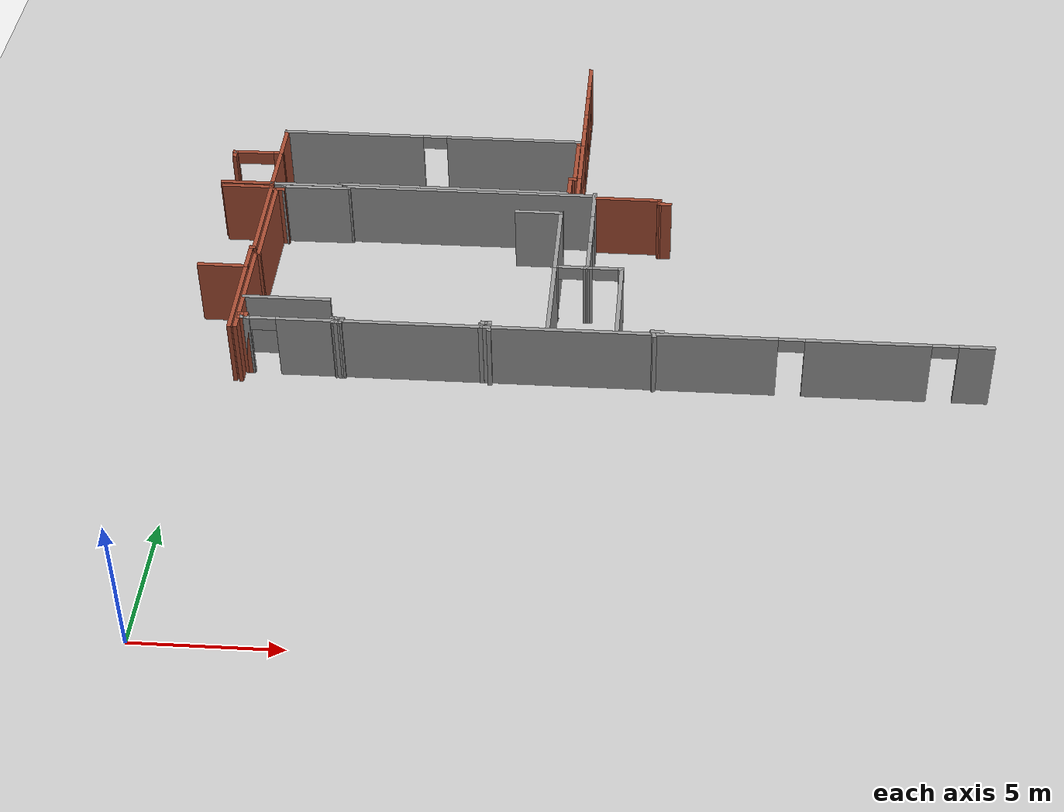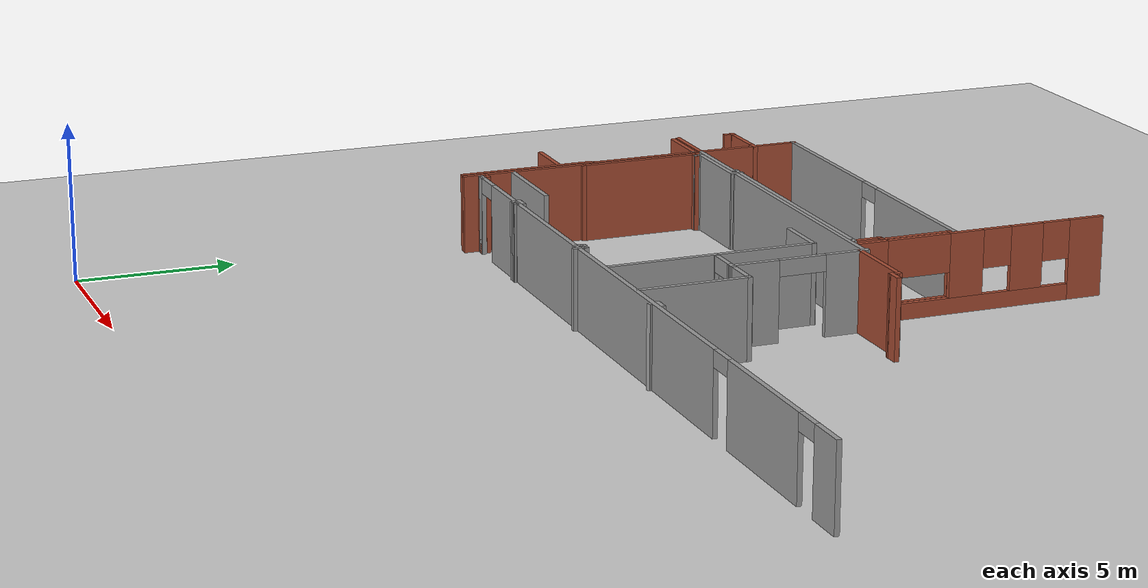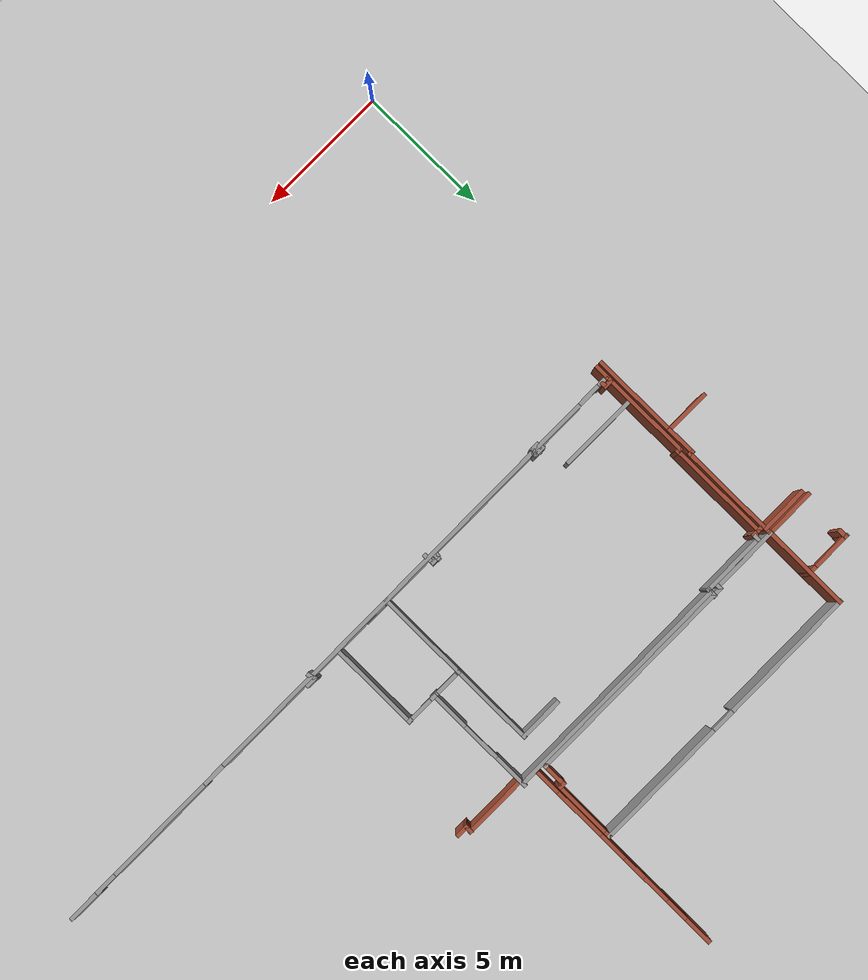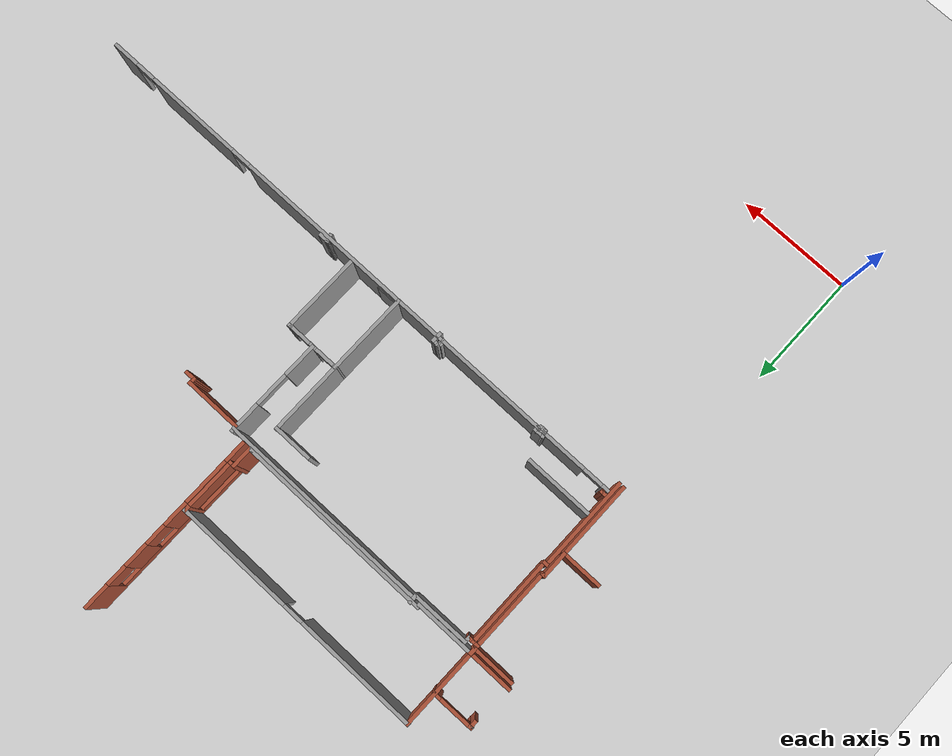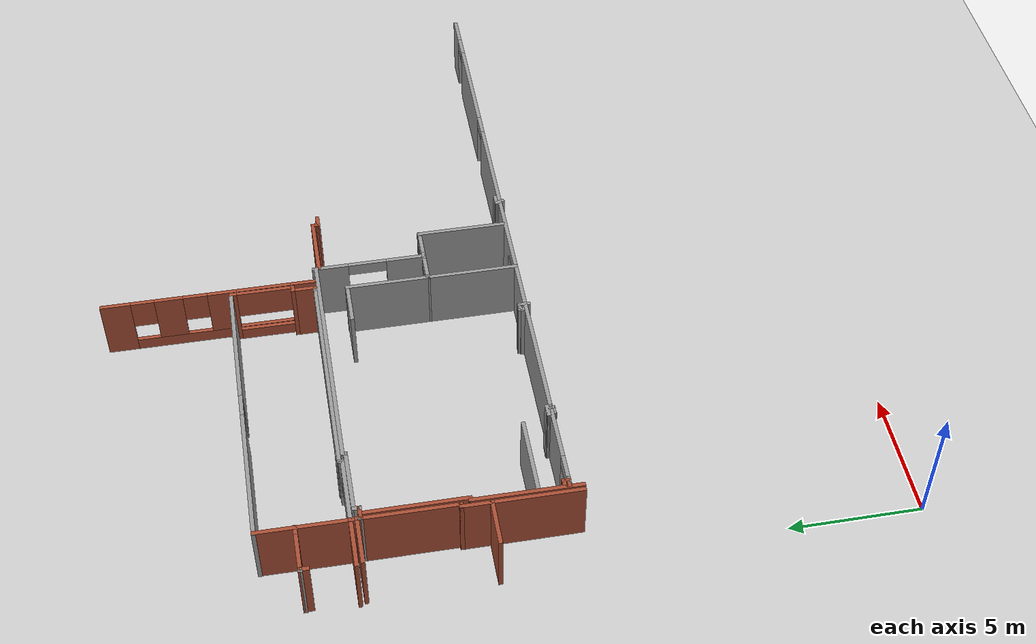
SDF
<sdf version="1.6">
 <world name="default">
  <model name="ground_plane">
   <static>1</static>
   <link name="link">
    <collision name="collision">
     <geometry><plane><normal>0 0 1</normal><size>100 100</size></plane></geometry>
     <surface><friction><ode><mu>100</mu><mu2>50</mu2></ode></friction></surface>
    </collision>
    <visual name="visual">
     <cast_shadows>0</cast_shadows>
     <geometry><plane><normal>0 0 1</normal><size>100 100</size></plane></geometry>
     <material>
      <script><uri>file://media/materials/scripts/gazebo.material</uri><name>Gazebo/Grey</name></script>
     </material>
    </visual>
   </link>
  </model>
  <model name="CVSSP">
   <pose>23.8714 24.094 0 0 -0 0</pose>
   <link name="Door_85">
    <collision name="Door_85_Collision">
     <geometry><box><size>0.9 0.17 2</size></box></geometry>
     <pose>0 0 1 0 -0 0</pose>
    </collision>
    <visual name="Door_85_Visual">
     <pose>0 0 1 0 -0 0</pose>
     <geometry><box><size>0.9 0.17 2</size></box></geometry>
     <material>
      <script><uri>file://media/materials/scripts/gazebo.material</uri><name>Gazebo/Grey</name></script>
     </material>
    </visual>
    <pose>-11.2111 -11.3756 0 0 -0 0</pose>
   </link>
   <link name="Wall_440">
    <pose>-17.0303 -0.419062 0 0 -0 3.14158</pose>
    <visual name="Wall_440_Visual_0">
     <pose>-3.09878 0 1.25 0 -0 0</pose>
     <geometry><box><size>5.103 0.15 2.5</size></box></geometry>
     <material>
      <script><uri>file://media/materials/scripts/gazebo.material</uri><name>Gazebo/Grey</name></script>
      <ambient>0.588235 0.588235 0.588235 1</ambient>
     </material>
    </visual>
    <collision name="Wall_440_Collision_0">
     <geometry><box><size>5.103 0.15 2.5</size></box></geometry>
     <pose>-3.09878 0 1.25 0 -0 0</pose>
    </collision>
    <visual name="Wall_440_Visual_1">
     <pose>3.0015 0 1.25 0 -0 0</pose>
     <geometry><box><size>5.29756 0.15 2.5</size></box></geometry>
     <material>
      <script><uri>file://media/materials/scripts/gazebo.material</uri><name>Gazebo/Grey</name></script>
      <ambient>0.588235 0.588235 0.588235 1</ambient>
     </material>
    </visual>
    <collision name="Wall_440_Collision_1">
     <geometry><box><size>5.29756 0.15 2.5</size></box></geometry>
     <pose>3.0015 0 1.25 0 -0 0</pose>
    </collision>
    <visual name="Wall_440_Visual_2">
     <pose>-0.097282 0 2.25 0 -0 0</pose>
     <geometry><box><size>0.9 0.15 0.5</size></box></geometry>
     <material>
      <script><uri>file://media/materials/scripts/gazebo.material</uri><name>Gazebo/Grey</name></script>
      <ambient>0.588235 0.588235 0.588235 1</ambient>
     </material>
    </visual>
    <collision name="Wall_440_Collision_2">
     <geometry><box><size>0.9 0.15 0.5</size></box></geometry>
     <pose>-0.097282 0 2.25 0 -0 0</pose>
    </collision>
   </link>
   <link name="Wall_446">
    <collision name="Wall_446_Collision">
     <geometry><box><size>3.45993 0.15 2.5</size></box></geometry>
     <pose>0 0 1.25 0 -0 0</pose>
    </collision>
    <visual name="Wall_446_Visual">
     <pose>0 0 1.25 0 -0 0</pose>
     <geometry><box><size>3.45993 0.15 2.5</size></box></geometry>
     <material>
      <script><uri>file://media/materials/scripts/gazebo.material</uri><name>Gazebo/Bricks</name></script>
      <ambient>1 1 1 1</ambient>
     </material>
    </visual>
    <pose>-22.5968 -2.07393 0 0 0 -1.57608</pose>
   </link>
   <link name="Wall_447">
    <collision name="Wall_447_Collision">
     <geometry><box><size>2.66471 0.15 2.5</size></box></geometry>
     <pose>0 0 1.25 0 -0 0</pose>
    </collision>
    <visual name="Wall_447_Visual">
     <pose>0 0 1.25 0 -0 0</pose>
     <geometry><box><size>2.66471 0.15 2.5</size></box></geometry>
     <material>
      <script><uri>file://media/materials/scripts/gazebo.material</uri><name>Gazebo/Grey</name></script>
      <ambient>0.588235 0.588235 0.588235 1</ambient>
     </material>
    </visual>
    <pose>-21.3307 -3.72683 0 0 -0 0.001626</pose>
   </link>
   <link name="Wall_449">
    <collision name="Wall_449_Collision">
     <geometry><box><size>0.25 0.15 2.5</size></box></geometry>
     <pose>0 0 1.25 0 -0 0</pose>
    </collision>
    <visual name="Wall_449_Visual">
     <pose>0 0 1.25 0 -0 0</pose>
     <geometry><box><size>0.25 0.15 2.5</size></box></geometry>
     <material>
      <script><uri>file://media/materials/scripts/gazebo.material</uri><name>Gazebo/Grey</name></script>
      <ambient>1 1 1 1</ambient>
     </material>
    </visual>
    <pose>-20.0734 -3.67478 0 0 -0 1.5708</pose>
   </link>
   <link name="Wall_450">
    <collision name="Wall_450_Collision">
     <geometry><box><size>8.5 0.15 2.5</size></box></geometry>
     <pose>0 0 1.25 0 -0 0</pose>
    </collision>
    <visual name="Wall_450_Visual">
     <pose>0 0 1.25 0 -0 0</pose>
     <geometry><box><size>8.5 0.15 2.5</size></box></geometry>
     <material>
      <script><uri>file://media/materials/scripts/gazebo.material</uri><name>Gazebo/Grey</name></script>
      <ambient>0.588235 0.588235 0.588235 1</ambient>
     </material>
    </visual>
    <pose>-15.8984 -3.62478 0 0 -0 0</pose>
   </link>
   <link name="Wall_451">
    <collision name="Wall_451_Collision">
     <geometry><box><size>0.25 0.15 2.5</size></box></geometry>
     <pose>0 0 1.25 0 -0 0</pose>
    </collision>
    <visual name="Wall_451_Visual">
     <pose>0 0 1.25 0 -0 0</pose>
     <geometry><box><size>0.25 0.15 2.5</size></box></geometry>
     <material>
      <script><uri>file://media/materials/scripts/gazebo.material</uri><name>Gazebo/Grey</name></script>
      <ambient>1 1 1 1</ambient>
     </material>
    </visual>
    <pose>-11.6734 -3.62478 0 0 -0 0</pose>
   </link>
   <link name="Wall_452">
    <collision name="Wall_452_Collision">
     <geometry><box><size>1 0.15 2.5</size></box></geometry>
     <pose>0 0 1.25 0 -0 0</pose>
    </collision>
    <visual name="Wall_452_Visual">
     <pose>0 0 1.25 0 -0 0</pose>
     <geometry><box><size>1 0.15 2.5</size></box></geometry>
     <material>
      <script><uri>file://media/materials/scripts/gazebo.material</uri><name>Gazebo/Bricks</name></script>
      <ambient>1 1 1 1</ambient>
     </material>
    </visual>
    <pose>-11.6234 -3.19978 0 0 -0 1.5708</pose>
   </link>
   <link name="Wall_453">
    <collision name="Wall_453_Collision">
     <geometry><box><size>0.31087 0.15 2.5</size></box></geometry>
     <pose>0 0 1.25 0 -0 0</pose>
    </collision>
    <visual name="Wall_453_Visual">
     <pose>0 0 1.25 0 -0 0</pose>
     <geometry><box><size>0.31087 0.15 2.5</size></box></geometry>
     <material>
      <script><uri>file://media/materials/scripts/gazebo.material</uri><name>Gazebo/Bricks</name></script>
      <ambient>1 1 1 1</ambient>
     </material>
    </visual>
    <pose>-11.543 -2.77478 0 0 -0 0</pose>
   </link>
   <link name="Wall_456">
    <pose>-11.4588 -1.59696 0 0 0 -1.57398</pose>
    <visual name="Wall_456_Visual_0">
     <pose>-1.10718 0 1.25 0 -0 0</pose>
     <geometry><box><size>0.291309 0.15 2.5</size></box></geometry>
     <material>
      <script><uri>file://media/materials/scripts/gazebo.material</uri><name>Gazebo/Bricks</name></script>
      <ambient>1 1 1 1</ambient>
     </material>
    </visual>
    <collision name="Wall_456_Collision_0">
     <geometry><box><size>0.291309 0.15 2.5</size></box></geometry>
     <pose>-1.10718 0 1.25 0 -0 0</pose>
    </collision>
    <visual name="Wall_456_Visual_1">
     <pose>0.145655 0 0.25 0 -0 0</pose>
     <geometry><box><size>2.21435 0.15 0.5</size></box></geometry>
     <material>
      <script><uri>file://media/materials/scripts/gazebo.material</uri><name>Gazebo/Bricks</name></script>
      <ambient>1 1 1 1</ambient>
     </material>
    </visual>
    <collision name="Wall_456_Collision_1">
     <geometry><box><size>2.21435 0.15 0.5</size></box></geometry>
     <pose>0.145655 0 0.25 0 -0 0</pose>
    </collision>
    <visual name="Wall_456_Visual_2">
     <pose>1.18044 0 1.5 0 -0 0</pose>
     <geometry><box><size>0.144785 0.15 2</size></box></geometry>
     <material>
      <script><uri>file://media/materials/scripts/gazebo.material</uri><name>Gazebo/Bricks</name></script>
      <ambient>1 1 1 1</ambient>
     </material>
    </visual>
    <collision name="Wall_456_Collision_2">
     <geometry><box><size>0.144785 0.15 2</size></box></geometry>
     <pose>1.18044 0 1.5 0 -0 0</pose>
    </collision>
    <visual name="Wall_456_Visual_3">
     <pose>0.073262 0 1.9 0 -0 0</pose>
     <geometry><box><size>2.06957 0.15 1.2</size></box></geometry>
     <material>
      <script><uri>file://media/materials/scripts/gazebo.material</uri><name>Gazebo/Bricks</name></script>
      <ambient>1 1 1 1</ambient>
     </material>
    </visual>
    <collision name="Wall_456_Collision_3">
     <geometry><box><size>2.06957 0.15 1.2</size></box></geometry>
     <pose>0.073262 0 1.9 0 -0 0</pose>
    </collision>
   </link>
   <link name="Wall_462">
    <pose>-11.2891 0.422048 0 0 0 -1.5708</pose>
    <visual name="Wall_462_Visual_0">
     <pose>-3.525 0 1.25 0 -0 0</pose>
     <geometry><box><size>1.14727 0.15 2.5</size></box></geometry>
     <material>
      <script><uri>file://media/materials/scripts/gazebo.material</uri><name>Gazebo/Bricks</name></script>
      <ambient>1 1 1 1</ambient>
     </material>
    </visual>
    <collision name="Wall_462_Collision_0">
     <geometry><box><size>1.14727 0.15 2.5</size></box></geometry>
     <pose>-3.525 0 1.25 0 -0 0</pose>
    </collision>
    <visual name="Wall_462_Visual_1">
     <pose>0.573634 0 0.25 0 -0 0</pose>
     <geometry><box><size>7.04999 0.15 0.5</size></box></geometry>
     <material>
      <script><uri>file://media/materials/scripts/gazebo.material</uri><name>Gazebo/Bricks</name></script>
      <ambient>1 1 1 1</ambient>
     </material>
    </visual>
    <collision name="Wall_462_Collision_1">
     <geometry><box><size>7.04999 0.15 0.5</size></box></geometry>
     <pose>0.573634 0 0.25 0 -0 0</pose>
    </collision>
    <visual name="Wall_462_Visual_2">
     <pose>-1.51444 0 1.5 0 -0 0</pose>
     <geometry><box><size>1.07833 0.15 2</size></box></geometry>
     <material>
      <script><uri>file://media/materials/scripts/gazebo.material</uri><name>Gazebo/Bricks</name></script>
      <ambient>1 1 1 1</ambient>
     </material>
    </visual>
    <collision name="Wall_462_Collision_2">
     <geometry><box><size>1.07833 0.15 2</size></box></geometry>
     <pose>-1.51444 0 1.5 0 -0 0</pose>
    </collision>
    <visual name="Wall_462_Visual_3">
     <pose>0.505032 0 1.5 0 -0 0</pose>
     <geometry><box><size>1.11295 0.15 2</size></box></geometry>
     <material>
      <script><uri>file://media/materials/scripts/gazebo.material</uri><name>Gazebo/Bricks</name></script>
      <ambient>1 1 1 1</ambient>
     </material>
    </visual>
    <collision name="Wall_462_Collision_3">
     <geometry><box><size>1.11295 0.15 2</size></box></geometry>
     <pose>0.505032 0 1.5 0 -0 0</pose>
    </collision>
    <visual name="Wall_462_Visual_4">
     <pose>3.60899 0 1.5 0 -0 0</pose>
     <geometry><box><size>0.979272 0.15 2</size></box></geometry>
     <material>
      <script><uri>file://media/materials/scripts/gazebo.material</uri><name>Gazebo/Bricks</name></script>
      <ambient>1 1 1 1</ambient>
     </material>
    </visual>
    <collision name="Wall_462_Collision_4">
     <geometry><box><size>0.979272 0.15 2</size></box></geometry>
     <pose>3.60899 0 1.5 0 -0 0</pose>
    </collision>
    <visual name="Wall_462_Visual_5">
     <pose>-2.50248 0 1.9 0 -0 0</pose>
     <geometry><box><size>0.89776 0.15 1.2</size></box></geometry>
     <material>
      <script><uri>file://media/materials/scripts/gazebo.material</uri><name>Gazebo/Bricks</name></script>
      <ambient>1 1 1 1</ambient>
     </material>
    </visual>
    <collision name="Wall_462_Collision_5">
     <geometry><box><size>0.89776 0.15 1.2</size></box></geometry>
     <pose>-2.50248 0 1.9 0 -0 0</pose>
    </collision>
    <visual name="Wall_462_Visual_6">
     <pose>-0.513357 0 1.9 0 -0 0</pose>
     <geometry><box><size>0.92383 0.15 1.2</size></box></geometry>
     <material>
      <script><uri>file://media/materials/scripts/gazebo.material</uri><name>Gazebo/Bricks</name></script>
      <ambient>1 1 1 1</ambient>
     </material>
    </visual>
    <collision name="Wall_462_Collision_6">
     <geometry><box><size>0.92383 0.15 1.2</size></box></geometry>
     <pose>-0.513357 0 1.9 0 -0 0</pose>
    </collision>
    <visual name="Wall_462_Visual_7">
     <pose>2.09043 0 1.9 0 -0 0</pose>
     <geometry><box><size>2.05785 0.15 1.2</size></box></geometry>
     <material>
      <script><uri>file://media/materials/scripts/gazebo.material</uri><name>Gazebo/Bricks</name></script>
      <ambient>1 1 1 1</ambient>
     </material>
    </visual>
    <collision name="Wall_462_Collision_7">
     <geometry><box><size>2.05785 0.15 1.2</size></box></geometry>
     <pose>2.09043 0 1.9 0 -0 0</pose>
    </collision>
   </link>
   <link name="Wall_472">
    <pose>-23.462 -1.83453 0 0 0 -3.13211</pose>
    <visual name="Wall_472_Visual_0">
     <pose>-0.773733 0 1.25 0 -0 0</pose>
     <geometry><box><size>0.368389 0.15 2.5</size></box></geometry>
     <material>
      <script><uri>file://media/materials/scripts/gazebo.material</uri><name>Gazebo/Bricks</name></script>
      <ambient>1 1 1 1</ambient>
     </material>
    </visual>
    <collision name="Wall_472_Collision_0">
     <geometry><box><size>0.368389 0.15 2.5</size></box></geometry>
     <pose>-0.773733 0 1.25 0 -0 0</pose>
    </collision>
    <visual name="Wall_472_Visual_1">
     <pose>0.857678 0 1.25 0 -0 0</pose>
     <geometry><box><size>0.2005 0.15 2.5</size></box></geometry>
     <material>
      <script><uri>file://media/materials/scripts/gazebo.material</uri><name>Gazebo/Bricks</name></script>
      <ambient>1 1 1 1</ambient>
     </material>
    </visual>
    <collision name="Wall_472_Collision_1">
     <geometry><box><size>0.2005 0.15 2.5</size></box></geometry>
     <pose>0.857678 0 1.25 0 -0 0</pose>
    </collision>
    <visual name="Wall_472_Visual_2">
     <pose>0.083944 0 2.25 0 -0 0</pose>
     <geometry><box><size>1.34697 0.15 0.5</size></box></geometry>
     <material>
      <script><uri>file://media/materials/scripts/gazebo.material</uri><name>Gazebo/Bricks</name></script>
      <ambient>1 1 1 1</ambient>
     </material>
    </visual>
    <collision name="Wall_472_Collision_2">
     <geometry><box><size>1.34697 0.15 0.5</size></box></geometry>
     <pose>0.083944 0 2.25 0 -0 0</pose>
    </collision>
   </link>
   <link name="Wall_473">
    <collision name="Wall_473_Collision">
     <geometry><box><size>0.15 0.15 2.5</size></box></geometry>
     <pose>0 0 1.25 0 -0 0</pose>
    </collision>
    <visual name="Wall_473_Visual">
     <pose>0 0 1.25 0 -0 0</pose>
     <geometry><box><size>0.15 0.15 2.5</size></box></geometry>
     <material>
      <script><uri>file://media/materials/scripts/gazebo.material</uri><name>Gazebo/Grey</name></script>
      <ambient>1 1 1 1</ambient>
     </material>
    </visual>
    <pose>-24.3449 -1.8429 0 0 -0 0</pose>
   </link>
   <link name="Wall_476">
    <collision name="Wall_476_Collision">
     <geometry><box><size>0.342391 0.15 2.5</size></box></geometry>
     <pose>0 0 1.25 0 -0 0</pose>
    </collision>
    <visual name="Wall_476_Visual">
     <pose>0 0 1.25 0 -0 0</pose>
     <geometry><box><size>0.342391 0.15 2.5</size></box></geometry>
     <material>
      <script><uri>file://media/materials/scripts/gazebo.material</uri><name>Gazebo/Bricks</name></script>
      <ambient>1 1 1 1</ambient>
     </material>
    </visual>
    <pose>-24.3099 -1.99157 0 0 -0 1.5708</pose>
   </link>
   <link name="Wall_481">
    <collision name="Wall_481_Collision">
     <geometry><box><size>2 0.15 2.5</size></box></geometry>
     <pose>0 0 1.25 0 -0 0</pose>
    </collision>
    <visual name="Wall_481_Visual">
     <pose>0 0 1.25 0 -0 0</pose>
     <geometry><box><size>2 0.15 2.5</size></box></geometry>
     <material>
      <script><uri>file://media/materials/scripts/gazebo.material</uri><name>Gazebo/Bricks</name></script>
      <ambient>1 1 1 1</ambient>
     </material>
    </visual>
    <pose>-23.5131 -3.72887 0 0 -0 3.14159</pose>
   </link>
   <link name="Wall_483">
    <collision name="Wall_483_Collision">
     <geometry><box><size>0.368526 0.15 2.5</size></box></geometry>
     <pose>0 0 1.25 0 -0 0</pose>
    </collision>
    <visual name="Wall_483_Visual">
     <pose>0 0 1.25 0 -0 0</pose>
     <geometry><box><size>0.368526 0.15 2.5</size></box></geometry>
     <material>
      <script><uri>file://media/materials/scripts/gazebo.material</uri><name>Gazebo/Bricks</name></script>
      <ambient>1 1 1 1</ambient>
     </material>
    </visual>
    <pose>-22.5906 -3.83811 0 0 0 -1.59404</pose>
   </link>
   <link name="Wall_484">
    <collision name="Wall_484_Collision">
     <geometry><box><size>1.89901 0.15 2.5</size></box></geometry>
     <pose>0 0 1.25 0 -0 0</pose>
    </collision>
    <visual name="Wall_484_Visual">
     <pose>0 0 1.25 0 -0 0</pose>
     <geometry><box><size>1.89901 0.15 2.5</size></box></geometry>
     <material>
      <script><uri>file://media/materials/scripts/gazebo.material</uri><name>Gazebo/Bricks</name></script>
      <ambient>1 1 1 1</ambient>
     </material>
    </visual>
    <pose>-23.4677 -3.94734 0 0 -0 3.14159</pose>
   </link>
   <link name="Wall_486">
    <collision name="Wall_486_Collision">
     <geometry><box><size>0.44095 0.15 2.5</size></box></geometry>
     <pose>0 0 1.25 0 -0 0</pose>
    </collision>
    <visual name="Wall_486_Visual">
     <pose>0 0 1.25 0 -0 0</pose>
     <geometry><box><size>0.44095 0.15 2.5</size></box></geometry>
     <material>
      <script><uri>file://media/materials/scripts/gazebo.material</uri><name>Gazebo/Grey</name></script>
      <ambient>1 1 1 1</ambient>
     </material>
    </visual>
    <pose>-19.7491 -3.7278 0 0 0 -1.5708</pose>
   </link>
   <link name="Wall_487">
    <collision name="Wall_487_Collision">
     <geometry><box><size>2.55302 0.15 2.5</size></box></geometry>
     <pose>0 0 1.25 0 -0 0</pose>
    </collision>
    <visual name="Wall_487_Visual">
     <pose>0 0 1.25 0 -0 0</pose>
     <geometry><box><size>2.55302 0.15 2.5</size></box></geometry>
     <material>
      <script><uri>file://media/materials/scripts/gazebo.material</uri><name>Gazebo/Grey</name></script>
      <ambient>0.588235 0.588235 0.588235 1</ambient>
     </material>
    </visual>
    <pose>-20.9506 -3.87989 0 0 0 -3.13609</pose>
   </link>
   <link name="Wall_488">
    <collision name="Wall_488_Collision">
     <geometry><box><size>0.348298 0.15 2.5</size></box></geometry>
     <pose>0 0 1.25 0 -0 0</pose>
    </collision>
    <visual name="Wall_488_Visual">
     <pose>0 0 1.25 0 -0 0</pose>
     <geometry><box><size>0.348298 0.15 2.5</size></box></geometry>
     <material>
      <script><uri>file://media/materials/scripts/gazebo.material</uri><name>Gazebo/Grey</name></script>
      <ambient>1 1 1 1</ambient>
     </material>
    </visual>
    <pose>-22.1597 -3.98536 0 0 0 -1.64757</pose>
   </link>
   <link name="Wall_490">
    <collision name="Wall_490_Collision">
     <geometry><box><size>0.287462 0.15 2.5</size></box></geometry>
     <pose>0 0 1.25 0 -0 0</pose>
    </collision>
    <visual name="Wall_490_Visual">
     <pose>0 0 1.25 0 -0 0</pose>
     <geometry><box><size>0.287462 0.15 2.5</size></box></geometry>
     <material>
      <script><uri>file://media/materials/scripts/gazebo.material</uri><name>Gazebo/Grey</name></script>
      <ambient>1 1 1 1</ambient>
     </material>
    </visual>
    <pose>-22.5946 -4.01605 0 0 0 -1.59176</pose>
   </link>
   <link name="Wall_491">
    <collision name="Wall_491_Collision">
     <geometry><box><size>0.593962 0.15 2.5</size></box></geometry>
     <pose>0 0 1.25 0 -0 0</pose>
    </collision>
    <visual name="Wall_491_Visual">
     <pose>0 0 1.25 0 -0 0</pose>
     <geometry><box><size>0.593962 0.15 2.5</size></box></geometry>
     <material>
      <script><uri>file://media/materials/scripts/gazebo.material</uri><name>Gazebo/Bricks</name></script>
      <ambient>1 1 1 1</ambient>
     </material>
    </visual>
    <pose>-22.3741 -4.08449 0 0 -0 0.001245</pose>
   </link>
   <link name="Wall_493">
    <collision name="Wall_493_Collision">
     <geometry><box><size>3.61071 0.15 2.5</size></box></geometry>
     <pose>0 0 1.25 0 -0 0</pose>
    </collision>
    <visual name="Wall_493_Visual">
     <pose>0 0 1.25 0 -0 0</pose>
     <geometry><box><size>3.61071 0.15 2.5</size></box></geometry>
     <material>
      <script><uri>file://media/materials/scripts/gazebo.material</uri><name>Gazebo/Bricks</name></script>
      <ambient>1 1 1 1</ambient>
     </material>
    </visual>
    <pose>-22.5979 -5.81513 0 0 0 -1.57189</pose>
   </link>
   <link name="Wall_494">
    <collision name="Wall_494_Collision">
     <geometry><box><size>0.25 0.15 2.5</size></box></geometry>
     <pose>0 0 1.25 0 -0 0</pose>
    </collision>
    <visual name="Wall_494_Visual">
     <pose>0 0 1.25 0 -0 0</pose>
     <geometry><box><size>0.25 0.15 2.5</size></box></geometry>
     <material>
      <script><uri>file://media/materials/scripts/gazebo.material</uri><name>Gazebo/Bricks</name></script>
      <ambient>1 1 1 1</ambient>
     </material>
    </visual>
    <pose>-22.6498 -7.54548 0 0 -0 3.14159</pose>
   </link>
   <link name="Wall_495">
    <collision name="Wall_495_Collision">
     <geometry><box><size>1.21522 0.15 2.5</size></box></geometry>
     <pose>0 0 1.25 0 -0 0</pose>
    </collision>
    <visual name="Wall_495_Visual">
     <pose>0 0 1.25 0 -0 0</pose>
     <geometry><box><size>1.21522 0.15 2.5</size></box></geometry>
     <material>
      <script><uri>file://media/materials/scripts/gazebo.material</uri><name>Gazebo/Bricks</name></script>
      <ambient>1 1 1 1</ambient>
     </material>
    </visual>
    <pose>-22.6998 -8.07809 0 0 0 -1.5708</pose>
   </link>
   <link name="Wall_497">
    <collision name="Wall_497_Collision">
     <geometry><box><size>1.80653 0.15 2.5</size></box></geometry>
     <pose>0 0 1.25 0 -0 0</pose>
    </collision>
    <visual name="Wall_497_Visual">
     <pose>0 0 1.25 0 -0 0</pose>
     <geometry><box><size>1.80653 0.15 2.5</size></box></geometry>
     <material>
      <script><uri>file://media/materials/scripts/gazebo.material</uri><name>Gazebo/Bricks</name></script>
      <ambient>1 1 1 1</ambient>
     </material>
    </visual>
    <pose>-23.5281 -8.61722 0 0 -0 3.13897</pose>
   </link>
   <link name="Wall_500">
    <collision name="Wall_500_Collision">
     <geometry><box><size>3.96739 0.15 2.5</size></box></geometry>
     <pose>0 0 1.25 0 -0 0</pose>
    </collision>
    <visual name="Wall_500_Visual">
     <pose>0 0 1.25 0 -0 0</pose>
     <geometry><box><size>3.96739 0.15 2.5</size></box></geometry>
     <material>
      <script><uri>file://media/materials/scripts/gazebo.material</uri><name>Gazebo/Bricks</name></script>
      <ambient>1 1 1 1</ambient>
     </material>
    </visual>
    <pose>-22.3824 -5.99331 0 0 0 -1.5708</pose>
   </link>
   <link name="Wall_502">
    <collision name="Wall_502_Collision">
     <geometry><box><size>0.25 0.15 2.5</size></box></geometry>
     <pose>0 0 1.25 0 -0 0</pose>
    </collision>
    <visual name="Wall_502_Visual">
     <pose>0 0 1.25 0 -0 0</pose>
     <geometry><box><size>0.25 0.15 2.5</size></box></geometry>
     <material>
      <script><uri>file://media/materials/scripts/gazebo.material</uri><name>Gazebo/Bricks</name></script>
      <ambient>1 1 1 1</ambient>
     </material>
    </visual>
    <pose>-22.4324 -7.902 0 0 -0 3.14159</pose>
   </link>
   <link name="Wall_503">
    <collision name="Wall_503_Collision">
     <geometry><box><size>4.11037 0.15 2.5</size></box></geometry>
     <pose>0 0 1.25 0 -0 0</pose>
    </collision>
    <visual name="Wall_503_Visual">
     <pose>0 0 1.25 0 -0 0</pose>
     <geometry><box><size>4.11037 0.15 2.5</size></box></geometry>
     <material>
      <script><uri>file://media/materials/scripts/gazebo.material</uri><name>Gazebo/Bricks</name></script>
      <ambient>1 1 1 1</ambient>
     </material>
    </visual>
    <pose>-22.4867 -9.88218 0 0 0 -1.57292</pose>
   </link>
   <link name="Wall_517">
    <pose>-9.53376 -11.3942 0 0 -0 3.14159</pose>
    <visual name="Wall_517_Visual_0">
     <pose>-12.2631 0 1.25 0 -0 0</pose>
     <geometry><box><size>1.22376 0.15 2.5</size></box></geometry>
     <material>
      <script><uri>file://media/materials/scripts/gazebo.material</uri><name>Gazebo/Grey</name></script>
      <ambient>0.588235 0.588235 0.588235 1</ambient>
     </material>
    </visual>
    <collision name="Wall_517_Collision_0">
     <geometry><box><size>1.22376 0.15 2.5</size></box></geometry>
     <pose>-12.2631 0 1.25 0 -0 0</pose>
    </collision>
    <visual name="Wall_517_Visual_1">
     <pose>-8.60772 0 1.25 0 -0 0</pose>
     <geometry><box><size>4.28704 0.15 2.5</size></box></geometry>
     <material>
      <script><uri>file://media/materials/scripts/gazebo.material</uri><name>Gazebo/Grey</name></script>
      <ambient>0.588235 0.588235 0.588235 1</ambient>
     </material>
    </visual>
    <collision name="Wall_517_Collision_1">
     <geometry><box><size>4.28704 0.15 2.5</size></box></geometry>
     <pose>-8.60772 0 1.25 0 -0 0</pose>
    </collision>
    <visual name="Wall_517_Visual_2">
     <pose>3.03485 0 1.25 0 -0 0</pose>
     <geometry><box><size>17.1981 0.15 2.5</size></box></geometry>
     <material>
      <script><uri>file://media/materials/scripts/gazebo.material</uri><name>Gazebo/Grey</name></script>
      <ambient>0.588235 0.588235 0.588235 1</ambient>
     </material>
    </visual>
    <collision name="Wall_517_Collision_2">
     <geometry><box><size>17.1981 0.15 2.5</size></box></geometry>
     <pose>3.03485 0 1.25 0 -0 0</pose>
    </collision>
    <visual name="Wall_517_Visual_3">
     <pose>12.7044 0 1.25 0 -0 0</pose>
     <geometry><box><size>0.341103 0.15 2.5</size></box></geometry>
     <material>
      <script><uri>file://media/materials/scripts/gazebo.material</uri><name>Gazebo/Grey</name></script>
      <ambient>0.588235 0.588235 0.588235 1</ambient>
     </material>
    </visual>
    <collision name="Wall_517_Collision_3">
     <geometry><box><size>0.341103 0.15 2.5</size></box></geometry>
     <pose>12.7044 0 1.25 0 -0 0</pose>
    </collision>
    <visual name="Wall_517_Visual_4">
     <pose>-11.2012 0 2.25 0 -0 0</pose>
     <geometry><box><size>0.9 0.15 0.5</size></box></geometry>
     <material>
      <script><uri>file://media/materials/scripts/gazebo.material</uri><name>Gazebo/Grey</name></script>
      <ambient>0.588235 0.588235 0.588235 1</ambient>
     </material>
    </visual>
    <collision name="Wall_517_Collision_4">
     <geometry><box><size>0.9 0.15 0.5</size></box></geometry>
     <pose>-11.2012 0 2.25 0 -0 0</pose>
    </collision>
    <visual name="Wall_517_Visual_5">
     <pose>-6.0142 0 2.25 0 -0 0</pose>
     <geometry><box><size>0.9 0.15 0.5</size></box></geometry>
     <material>
      <script><uri>file://media/materials/scripts/gazebo.material</uri><name>Gazebo/Grey</name></script>
      <ambient>0.588235 0.588235 0.588235 1</ambient>
     </material>
    </visual>
    <collision name="Wall_517_Collision_5">
     <geometry><box><size>0.9 0.15 0.5</size></box></geometry>
     <pose>-6.0142 0 2.25 0 -0 0</pose>
    </collision>
    <visual name="Wall_517_Visual_6">
     <pose>12.0839 0 2.25 0 -0 0</pose>
     <geometry><box><size>0.9 0.15 0.5</size></box></geometry>
     <material>
      <script><uri>file://media/materials/scripts/gazebo.material</uri><name>Gazebo/Grey</name></script>
      <ambient>0.588235 0.588235 0.588235 1</ambient>
     </material>
    </visual>
    <collision name="Wall_517_Collision_6">
     <geometry><box><size>0.9 0.15 0.5</size></box></geometry>
     <pose>12.0839 0 2.25 0 -0 0</pose>
    </collision>
   </link>
   <link name="Wall_519">
    <collision name="Wall_519_Collision">
     <geometry><box><size>0.25 0.15 2.5</size></box></geometry>
     <pose>0 0 1.25 0 -0 0</pose>
    </collision>
    <visual name="Wall_519_Visual">
     <pose>0 0 1.25 0 -0 0</pose>
     <geometry><box><size>0.25 0.15 2.5</size></box></geometry>
     <material>
      <script><uri>file://media/materials/scripts/gazebo.material</uri><name>Gazebo/Bricks</name></script>
      <ambient>1 1 1 1</ambient>
     </material>
    </visual>
    <pose>-22.3838 -11.3942 0 0 -0 3.14159</pose>
   </link>
   <link name="Wall_522">
    <collision name="Wall_522_Collision">
     <geometry><box><size>3.38312 0.15 2.5</size></box></geometry>
     <pose>0 0 1.25 0 -0 0</pose>
    </collision>
    <visual name="Wall_522_Visual">
     <pose>0 0 1.25 0 -0 0</pose>
     <geometry><box><size>3.38312 0.15 2.5</size></box></geometry>
     <material>
      <script><uri>file://media/materials/scripts/gazebo.material</uri><name>Gazebo/Bricks</name></script>
      <ambient>1 1 1 1</ambient>
     </material>
    </visual>
    <pose>-22.6978 -10.236 0 0 -0 1.57204</pose>
   </link>
   <link name="Wall_524">
    <pose>-10.6649 -5.806 0 0 0 -1.5708</pose>
    <visual name="Wall_524_Visual_0">
     <pose>-1.50177 0 1.25 0 -0 0</pose>
     <geometry><box><size>1.40395 0.15 2.5</size></box></geometry>
     <material>
      <script><uri>file://media/materials/scripts/gazebo.material</uri><name>Gazebo/Grey</name></script>
      <ambient>0.588235 0.588235 0.588235 1</ambient>
     </material>
    </visual>
    <collision name="Wall_524_Collision_0">
     <geometry><box><size>1.40395 0.15 2.5</size></box></geometry>
     <pose>-1.50177 0 1.25 0 -0 0</pose>
    </collision>
    <visual name="Wall_524_Visual_1">
     <pose>1.44258 0 1.25 0 -0 0</pose>
     <geometry><box><size>1.52232 0.15 2.5</size></box></geometry>
     <material>
      <script><uri>file://media/materials/scripts/gazebo.material</uri><name>Gazebo/Grey</name></script>
      <ambient>0.588235 0.588235 0.588235 1</ambient>
     </material>
    </visual>
    <collision name="Wall_524_Collision_1">
     <geometry><box><size>1.52232 0.15 2.5</size></box></geometry>
     <pose>1.44258 0 1.25 0 -0 0</pose>
    </collision>
    <visual name="Wall_524_Visual_2">
     <pose>-0.059186 0 2.25 0 -0 0</pose>
     <geometry><box><size>1.48121 0.15 0.5</size></box></geometry>
     <material>
      <script><uri>file://media/materials/scripts/gazebo.material</uri><name>Gazebo/Grey</name></script>
      <ambient>0.588235 0.588235 0.588235 1</ambient>
     </material>
    </visual>
    <collision name="Wall_524_Collision_2">
     <geometry><box><size>1.48121 0.15 0.5</size></box></geometry>
     <pose>-0.059186 0 2.25 0 -0 0</pose>
    </collision>
   </link>
   <link name="Wall_525">
    <pose>-11.2447 -7.9568 0 0 -0 3.13973</pose>
    <visual name="Wall_525_Visual_0">
     <pose>-0.544548 0 1.25 0 -0 0</pose>
     <geometry><box><size>0.220502 0.15 2.5</size></box></geometry>
     <material>
      <script><uri>file://media/materials/scripts/gazebo.material</uri><name>Gazebo/Grey</name></script>
      <ambient>0.588235 0.588235 0.588235 1</ambient>
     </material>
    </visual>
    <collision name="Wall_525_Collision_0">
     <geometry><box><size>0.220502 0.15 2.5</size></box></geometry>
     <pose>-0.544548 0 1.25 0 -0 0</pose>
    </collision>
    <visual name="Wall_525_Visual_1">
     <pose>0.560251 0 1.25 0 -0 0</pose>
     <geometry><box><size>0.189095 0.15 2.5</size></box></geometry>
     <material>
      <script><uri>file://media/materials/scripts/gazebo.material</uri><name>Gazebo/Grey</name></script>
      <ambient>0.588235 0.588235 0.588235 1</ambient>
     </material>
    </visual>
    <collision name="Wall_525_Collision_1">
     <geometry><box><size>0.189095 0.15 2.5</size></box></geometry>
     <pose>0.560251 0 1.25 0 -0 0</pose>
    </collision>
    <visual name="Wall_525_Visual_2">
     <pose>0.015703 0 2.25 0 -0 0</pose>
     <geometry><box><size>0.9 0.15 0.5</size></box></geometry>
     <material>
      <script><uri>file://media/materials/scripts/gazebo.material</uri><name>Gazebo/Grey</name></script>
      <ambient>0.588235 0.588235 0.588235 1</ambient>
     </material>
    </visual>
    <collision name="Wall_525_Collision_2">
     <geometry><box><size>0.9 0.15 0.5</size></box></geometry>
     <pose>0.015703 0 2.25 0 -0 0</pose>
    </collision>
   </link>
   <link name="Wall_526">
    <collision name="Wall_526_Collision">
     <geometry><box><size>3.58305 0.15 2.5</size></box></geometry>
     <pose>0 0 1.25 0 -0 0</pose>
    </collision>
    <visual name="Wall_526_Visual">
     <pose>0 0 1.25 0 -0 0</pose>
     <geometry><box><size>3.58305 0.15 2.5</size></box></geometry>
     <material>
      <script><uri>file://media/materials/scripts/gazebo.material</uri><name>Gazebo/Grey</name></script>
      <ambient>0.588235 0.588235 0.588235 1</ambient>
     </material>
    </visual>
    <pose>-11.8234 -9.67224 0 0 0 -1.5702</pose>
   </link>
   <link name="Wall_528">
    <pose>-10.0632 -7.95787 0 0 -0 0</pose>
    <visual name="Wall_528_Visual_0">
     <pose>-0.550159 0 1.25 0 -0 0</pose>
     <geometry><box><size>0.253402 0.15 2.5</size></box></geometry>
     <material>
      <script><uri>file://media/materials/scripts/gazebo.material</uri><name>Gazebo/Grey</name></script>
      <ambient>0.588235 0.588235 0.588235 1</ambient>
     </material>
    </visual>
    <collision name="Wall_528_Collision_0">
     <geometry><box><size>0.253402 0.15 2.5</size></box></geometry>
     <pose>-0.550159 0 1.25 0 -0 0</pose>
    </collision>
    <visual name="Wall_528_Visual_1">
     <pose>0.576701 0 1.25 0 -0 0</pose>
     <geometry><box><size>0.200318 0.15 2.5</size></box></geometry>
     <material>
      <script><uri>file://media/materials/scripts/gazebo.material</uri><name>Gazebo/Grey</name></script>
      <ambient>0.588235 0.588235 0.588235 1</ambient>
     </material>
    </visual>
    <collision name="Wall_528_Collision_1">
     <geometry><box><size>0.200318 0.15 2.5</size></box></geometry>
     <pose>0.576701 0 1.25 0 -0 0</pose>
    </collision>
    <visual name="Wall_528_Visual_2">
     <pose>0.026542 0 2.25 0 -0 0</pose>
     <geometry><box><size>0.9 0.15 0.5</size></box></geometry>
     <material>
      <script><uri>file://media/materials/scripts/gazebo.material</uri><name>Gazebo/Grey</name></script>
      <ambient>0.588235 0.588235 0.588235 1</ambient>
     </material>
    </visual>
    <collision name="Wall_528_Collision_2">
     <geometry><box><size>0.9 0.15 0.5</size></box></geometry>
     <pose>0.026542 0 2.25 0 -0 0</pose>
    </collision>
   </link>
   <link name="Wall_529">
    <collision name="Wall_529_Collision">
     <geometry><box><size>3.5 0.15 2.5</size></box></geometry>
     <pose>0 0 1.25 0 -0 0</pose>
    </collision>
    <visual name="Wall_529_Visual">
     <pose>0 0 1.25 0 -0 0</pose>
     <geometry><box><size>3.5 0.15 2.5</size></box></geometry>
     <material>
      <script><uri>file://media/materials/scripts/gazebo.material</uri><name>Gazebo/Grey</name></script>
      <ambient>0.588235 0.588235 0.588235 1</ambient>
     </material>
    </visual>
    <pose>-9.4614 -9.62137 0 0 0 -1.5708</pose>
   </link>
   <link name="Wall_531">
    <collision name="Wall_531_Collision">
     <geometry><box><size>3.27645 0.15 2.5</size></box></geometry>
     <pose>0 0 1.25 0 -0 0</pose>
    </collision>
    <visual name="Wall_531_Visual">
     <pose>0 0 1.25 0 -0 0</pose>
     <geometry><box><size>3.27645 0.15 2.5</size></box></geometry>
     <material>
      <script><uri>file://media/materials/scripts/gazebo.material</uri><name>Gazebo/Grey</name></script>
      <ambient>0.588235 0.588235 0.588235 1</ambient>
     </material>
    </visual>
    <pose>-11.8245 -6.39249 0 0 -0 1.5708</pose>
   </link>
   <link name="Wall_557">
    <collision name="Wall_557_Collision">
     <geometry><box><size>0.5 0.15 2.5</size></box></geometry>
     <pose>0 0 1.25 0 -0 0</pose>
    </collision>
    <visual name="Wall_557_Visual">
     <pose>0 0 1.25 0 -0 0</pose>
     <geometry><box><size>0.5 0.15 2.5</size></box></geometry>
     <material>
      <script><uri>file://media/materials/scripts/gazebo.material</uri><name>Gazebo/Grey</name></script>
      <ambient>1 1 1 1</ambient>
     </material>
    </visual>
    <pose>-13.8279 -11.3433 0 0 -0 1.5708</pose>
   </link>
   <link name="Wall_558">
    <collision name="Wall_558_Collision">
     <geometry><box><size>0.25 0.15 2.5</size></box></geometry>
     <pose>0 0 1.25 0 -0 0</pose>
    </collision>
    <visual name="Wall_558_Visual">
     <pose>0 0 1.25 0 -0 0</pose>
     <geometry><box><size>0.25 0.15 2.5</size></box></geometry>
     <material>
      <script><uri>file://media/materials/scripts/gazebo.material</uri><name>Gazebo/Grey</name></script>
      <ambient>1 1 1 1</ambient>
     </material>
    </visual>
    <pose>-13.8779 -11.1683 0 0 -0 3.14159</pose>
   </link>
   <link name="Wall_559">
    <collision name="Wall_559_Collision">
     <geometry><box><size>0.25 0.15 2.5</size></box></geometry>
     <pose>0 0 1.25 0 -0 0</pose>
    </collision>
    <visual name="Wall_559_Visual">
     <pose>0 0 1.25 0 -0 0</pose>
     <geometry><box><size>0.25 0.15 2.5</size></box></geometry>
     <material>
      <script><uri>file://media/materials/scripts/gazebo.material</uri><name>Gazebo/Grey</name></script>
      <ambient>1 1 1 1</ambient>
     </material>
    </visual>
    <pose>-13.9779 -11.1683 0 0 -0 3.14159</pose>
   </link>
   <link name="Wall_562">
    <collision name="Wall_562_Collision">
     <geometry><box><size>0.249529 0.15 2.5</size></box></geometry>
     <pose>0 0 1.25 0 -0 0</pose>
    </collision>
    <visual name="Wall_562_Visual">
     <pose>0 0 1.25 0 -0 0</pose>
     <geometry><box><size>0.249529 0.15 2.5</size></box></geometry>
     <material>
      <script><uri>file://media/materials/scripts/gazebo.material</uri><name>Gazebo/Grey</name></script>
      <ambient>1 1 1 1</ambient>
     </material>
    </visual>
    <pose>-14.0684 -11.2015 0 0 0 -1.5708</pose>
   </link>
   <link name="Wall_563">
    <collision name="Wall_563_Collision">
     <geometry><box><size>0.201879 0.15 2.5</size></box></geometry>
     <pose>0 0 1.25 0 -0 0</pose>
    </collision>
    <visual name="Wall_563_Visual">
     <pose>0 0 1.25 0 -0 0</pose>
     <geometry><box><size>0.201879 0.15 2.5</size></box></geometry>
     <material>
      <script><uri>file://media/materials/scripts/gazebo.material</uri><name>Gazebo/Grey</name></script>
      <ambient>1 1 1 1</ambient>
     </material>
    </visual>
    <pose>-14.0943 -11.2512 0 0 -0 3.14159</pose>
   </link>
   <link name="Wall_564">
    <collision name="Wall_564_Collision">
     <geometry><box><size>0.296991 0.15 2.5</size></box></geometry>
     <pose>0 0 1.25 0 -0 0</pose>
    </collision>
    <visual name="Wall_564_Visual">
     <pose>0 0 1.25 0 -0 0</pose>
     <geometry><box><size>0.296991 0.15 2.5</size></box></geometry>
     <material>
      <script><uri>file://media/materials/scripts/gazebo.material</uri><name>Gazebo/Grey</name></script>
      <ambient>1 1 1 1</ambient>
     </material>
    </visual>
    <pose>-14.1203 -11.3247 0 0 0 -1.5708</pose>
   </link>
   <link name="Wall_584">
    <collision name="Wall_584_Collision">
     <geometry><box><size>3.0958 0.15 2.5</size></box></geometry>
     <pose>0 0 1.25 0 -0 0</pose>
    </collision>
    <visual name="Wall_584_Visual">
     <pose>0 0 1.25 0 -0 0</pose>
     <geometry><box><size>3.0958 0.15 2.5</size></box></geometry>
     <material>
      <script><uri>file://media/materials/scripts/gazebo.material</uri><name>Gazebo/Grey</name></script>
      <ambient>0.588235 0.588235 0.588235 1</ambient>
     </material>
    </visual>
    <pose>-20.9847 -10.2804 0 0 0 -0.001578</pose>
   </link>
   <link name="Wall_588">
    <collision name="Wall_588_Collision">
     <geometry><box><size>1.75 0.15 2.5</size></box></geometry>
     <pose>0 0 1.25 0 -0 0</pose>
    </collision>
    <visual name="Wall_588_Visual">
     <pose>0 0 1.25 0 -0 0</pose>
     <geometry><box><size>1.75 0.15 2.5</size></box></geometry>
     <material>
      <script><uri>file://media/materials/scripts/gazebo.material</uri><name>Gazebo/Grey</name></script>
      <ambient>1 1 1 1</ambient>
     </material>
    </visual>
    <pose>-12.6245 -4.84249 0 0 -0 0</pose>
   </link>
   <link name="Wall_592">
    <collision name="Wall_592_Collision">
     <geometry><box><size>9.22236 0.15 2.5</size></box></geometry>
     <pose>0 0 1.25 0 -0 0</pose>
    </collision>
    <visual name="Wall_592_Visual">
     <pose>0 0 1.25 0 -0 0</pose>
     <geometry><box><size>9.22236 0.15 2.5</size></box></geometry>
     <material>
      <script><uri>file://media/materials/scripts/gazebo.material</uri><name>Gazebo/Grey</name></script>
      <ambient>0.588235 0.588235 0.588235 1</ambient>
     </material>
    </visual>
    <pose>-15.1997 -3.76312 0 0 -0 0.001458</pose>
   </link>
   <link name="Wall_780">
    <collision name="Wall_780_Collision">
     <geometry><box><size>0.376102 0.15 2.5</size></box></geometry>
     <pose>0 0 1.25 0 -0 0</pose>
    </collision>
    <visual name="Wall_780_Visual">
     <pose>0 0 1.25 0 -0 0</pose>
     <geometry><box><size>0.376102 0.15 2.5</size></box></geometry>
     <material>
      <script><uri>file://media/materials/scripts/gazebo.material</uri><name>Gazebo/Bricks</name></script>
      <ambient>1 1 1 1</ambient>
     </material>
    </visual>
    <pose>-22.338 -11.2138 0 0 -0 0</pose>
   </link>
   <link name="Wall_781">
    <collision name="Wall_781_Collision">
     <geometry><box><size>0.336201 0.15 2.5</size></box></geometry>
     <pose>0 0 1.25 0 -0 0</pose>
    </collision>
    <visual name="Wall_781_Visual">
     <pose>0 0 1.25 0 -0 0</pose>
     <geometry><box><size>0.336201 0.15 2.5</size></box></geometry>
     <material>
      <script><uri>file://media/materials/scripts/gazebo.material</uri><name>Gazebo/Bricks</name></script>
      <ambient>1 1 1 1</ambient>
     </material>
    </visual>
    <pose>-22.225 -11.3069 0 0 0 -1.5708</pose>
   </link>
   <link name="Wall_782">
    <collision name="Wall_782_Collision">
     <geometry><box><size>0.2165 0.15 2.5</size></box></geometry>
     <pose>0 0 1.25 0 -0 0</pose>
    </collision>
    <visual name="Wall_782_Visual">
     <pose>0 0 1.25 0 -0 0</pose>
     <geometry><box><size>0.2165 0.15 2.5</size></box></geometry>
     <material>
      <script><uri>file://media/materials/scripts/gazebo.material</uri><name>Gazebo/Grey</name></script>
      <ambient>1 1 1 1</ambient>
     </material>
    </visual>
    <pose>-22.1917 -11.4 0 0 -0 0</pose>
   </link>
   <link name="Wall_788">
    <collision name="Wall_788_Collision">
     <geometry><box><size>0.509103 0.15 2.5</size></box></geometry>
     <pose>0 0 1.25 0 -0 0</pose>
    </collision>
    <visual name="Wall_788_Visual">
     <pose>0 0 1.25 0 -0 0</pose>
     <geometry><box><size>0.509103 0.15 2.5</size></box></geometry>
     <material>
      <script><uri>file://media/materials/scripts/gazebo.material</uri><name>Gazebo/Grey</name></script>
      <ambient>0.588235 0.588235 0.588235 1</ambient>
     </material>
    </visual>
    <pose>-19.0662 -11.267 0 0 -0 0</pose>
   </link>
   <link name="Wall_789">
    <collision name="Wall_789_Collision">
     <geometry><box><size>0.25 0.15 2.5</size></box></geometry>
     <pose>0 0 1.25 0 -0 0</pose>
    </collision>
    <visual name="Wall_789_Visual">
     <pose>0 0 1.25 0 -0 0</pose>
     <geometry><box><size>0.25 0.15 2.5</size></box></geometry>
     <material>
      <script><uri>file://media/materials/scripts/gazebo.material</uri><name>Gazebo/Grey</name></script>
      <ambient>1 1 1 1</ambient>
     </material>
    </visual>
    <pose>-18.8867 -11.317 0 0 0 -1.5708</pose>
   </link>
   <link name="Wall_790">
    <collision name="Wall_790_Collision">
     <geometry><box><size>0.216808 0.15 2.5</size></box></geometry>
     <pose>0 0 1.25 0 -0 0</pose>
    </collision>
    <visual name="Wall_790_Visual">
     <pose>0 0 1.25 0 -0 0</pose>
     <geometry><box><size>0.216808 0.15 2.5</size></box></geometry>
     <material>
      <script><uri>file://media/materials/scripts/gazebo.material</uri><name>Gazebo/Grey</name></script>
      <ambient>1 1 1 1</ambient>
     </material>
    </visual>
    <pose>-18.9199 -11.3702 0 0 0 -3.04564</pose>
   </link>
   <link name="Wall_791">
    <collision name="Wall_791_Collision">
     <geometry><box><size>0.25 0.15 2.5</size></box></geometry>
     <pose>0 0 1.25 0 -0 0</pose>
    </collision>
    <visual name="Wall_791_Visual">
     <pose>0 0 1.25 0 -0 0</pose>
     <geometry><box><size>0.25 0.15 2.5</size></box></geometry>
     <material>
      <script><uri>file://media/materials/scripts/gazebo.material</uri><name>Gazebo/Grey</name></script>
      <ambient>1 1 1 1</ambient>
     </material>
    </visual>
    <pose>-18.9532 -11.4234 0 0 0 -1.5708</pose>
   </link>
   <link name="Wall_792">
    <collision name="Wall_792_Collision">
     <geometry><box><size>0.376207 0.15 2.5</size></box></geometry>
     <pose>0 0 1.25 0 -0 0</pose>
    </collision>
    <visual name="Wall_792_Visual">
     <pose>0 0 1.25 0 -0 0</pose>
     <geometry><box><size>0.376207 0.15 2.5</size></box></geometry>
     <material>
      <script><uri>file://media/materials/scripts/gazebo.material</uri><name>Gazebo/Grey</name></script>
      <ambient>0.588235 0.588235 0.588235 1</ambient>
     </material>
    </visual>
    <pose>-19.0662 -11.4699 0 0 -0 3.11109</pose>
   </link>
   <link name="Wall_793">
    <collision name="Wall_793_Collision">
     <geometry><box><size>0.360293 0.15 2.5</size></box></geometry>
     <pose>0 0 1.25 0 -0 0</pose>
    </collision>
    <visual name="Wall_793_Visual">
     <pose>0 0 1.25 0 -0 0</pose>
     <geometry><box><size>0.360293 0.15 2.5</size></box></geometry>
     <material>
      <script><uri>file://media/materials/scripts/gazebo.material</uri><name>Gazebo/Grey</name></script>
      <ambient>0.588235 0.588235 0.588235 1</ambient>
     </material>
    </visual>
    <pose>-19.2125 -11.3667 0 0 -0 1.89255</pose>
   </link>
   <link name="Wall_800">
    <collision name="Wall_800_Collision">
     <geometry><box><size>2.52089 0.15 2.5</size></box></geometry>
     <pose>0 0 1.25 0 -0 0</pose>
    </collision>
    <visual name="Wall_800_Visual">
     <pose>0 0 1.25 0 -0 0</pose>
     <geometry><box><size>2.52089 0.15 2.5</size></box></geometry>
     <material>
      <script><uri>file://media/materials/scripts/gazebo.material</uri><name>Gazebo/Bricks</name></script>
      <ambient>1 1 1 1</ambient>
     </material>
    </visual>
    <pose>-9.45754 -3.87382 0 0 -0 0</pose>
   </link>
   <link name="Wall_801">
    <collision name="Wall_801_Collision">
     <geometry><box><size>0.358175 0.15 2.5</size></box></geometry>
     <pose>0 0 1.25 0 -0 0</pose>
    </collision>
    <visual name="Wall_801_Visual">
     <pose>0 0 1.25 0 -0 0</pose>
     <geometry><box><size>0.358175 0.15 2.5</size></box></geometry>
     <material>
      <script><uri>file://media/materials/scripts/gazebo.material</uri><name>Gazebo/Bricks</name></script>
      <ambient>1 1 1 1</ambient>
     </material>
    </visual>
    <pose>-8.27788 -3.9779 0 0 0 -1.6263</pose>
   </link>
   <link name="Wall_802">
    <collision name="Wall_802_Collision">
     <geometry><box><size>0.531655 0.15 2.5</size></box></geometry>
     <pose>0 0 1.25 0 -0 0</pose>
    </collision>
    <visual name="Wall_802_Visual">
     <pose>0 0 1.25 0 -0 0</pose>
     <geometry><box><size>0.531655 0.15 2.5</size></box></geometry>
     <material>
      <script><uri>file://media/materials/scripts/gazebo.material</uri><name>Gazebo/Bricks</name></script>
      <ambient>1 1 1 1</ambient>
     </material>
    </visual>
    <pose>-8.09283 -4.08199 0 0 -0 0</pose>
   </link>
   <link name="Wall_844">
    <collision name="Wall_844_Collision">
     <geometry><box><size>0.487216 0.15 2.5</size></box></geometry>
     <pose>0 0 1.25 0 -0 0</pose>
    </collision>
    <visual name="Wall_844_Visual">
     <pose>0 0 1.25 0 -0 0</pose>
     <geometry><box><size>0.487216 0.15 2.5</size></box></geometry>
     <material>
      <script><uri>file://media/materials/scripts/gazebo.material</uri><name>Gazebo/Grey</name></script>
      <ambient>1 1 1 1</ambient>
     </material>
    </visual>
    <pose>-8.08094 -11.2624 0 0 -0 0</pose>
   </link>
   <link name="Wall_847">
    <collision name="Wall_847_Collision">
     <geometry><box><size>0.393489 0.15 2.5</size></box></geometry>
     <pose>0 0 1.25 0 -0 0</pose>
    </collision>
    <visual name="Wall_847_Visual">
     <pose>0 0 1.25 0 -0 0</pose>
     <geometry><box><size>0.393489 0.15 2.5</size></box></geometry>
     <material>
      <script><uri>file://media/materials/scripts/gazebo.material</uri><name>Gazebo/Grey</name></script>
      <ambient>1 1 1 1</ambient>
     </material>
    </visual>
    <pose>-8.21497 -11.3791 0 0 -0 1.85885</pose>
   </link>
   <static>1</static>
  </model>
 </world>
</sdf>
